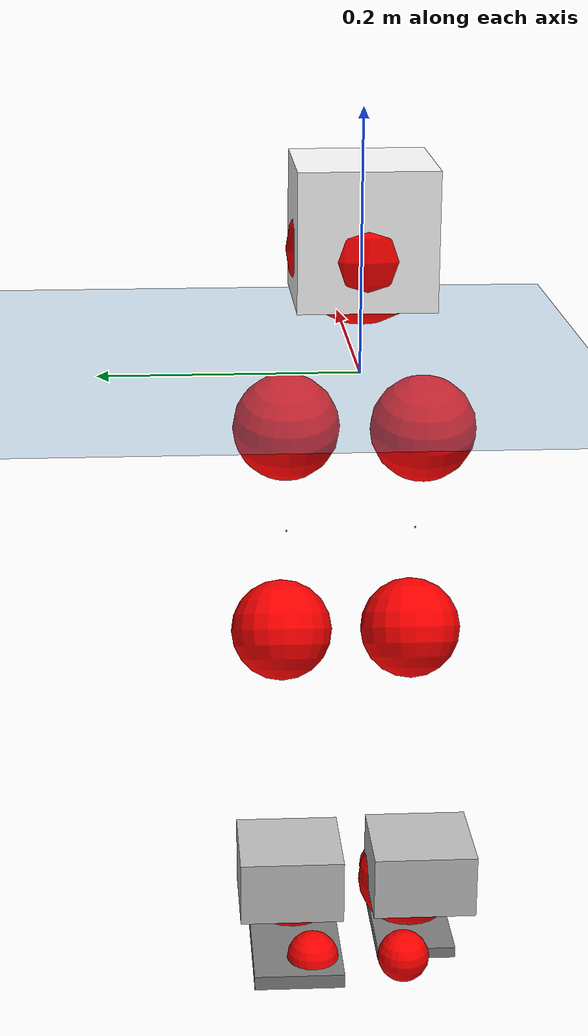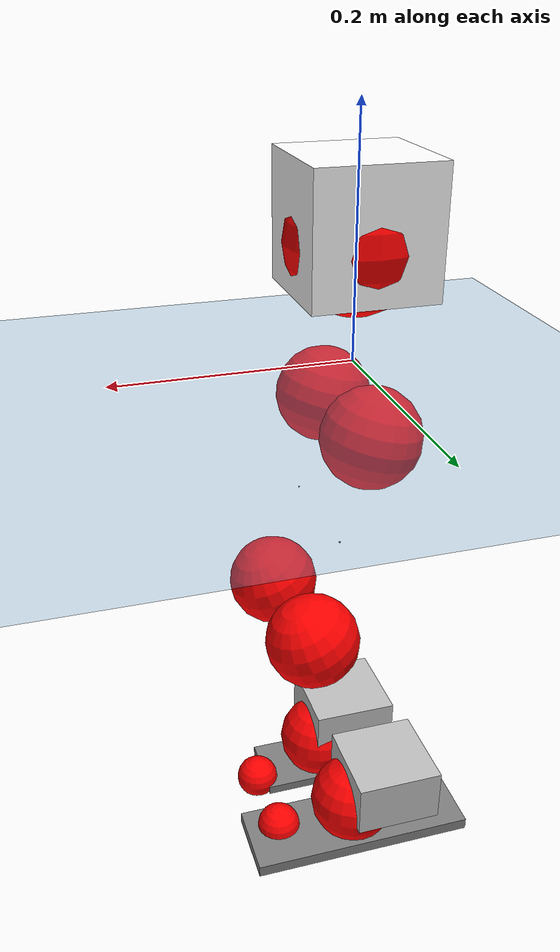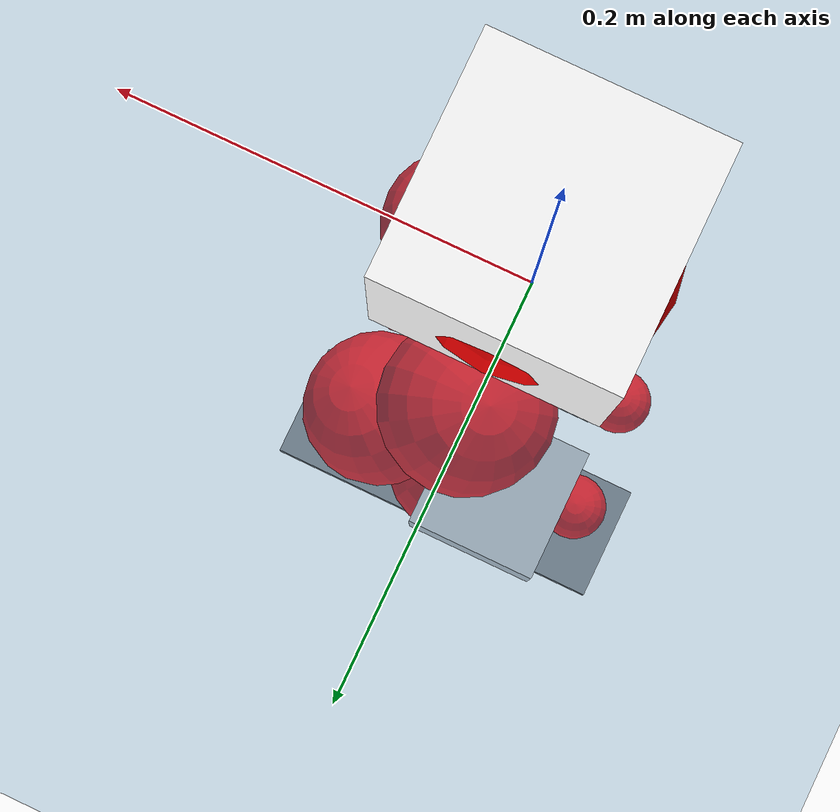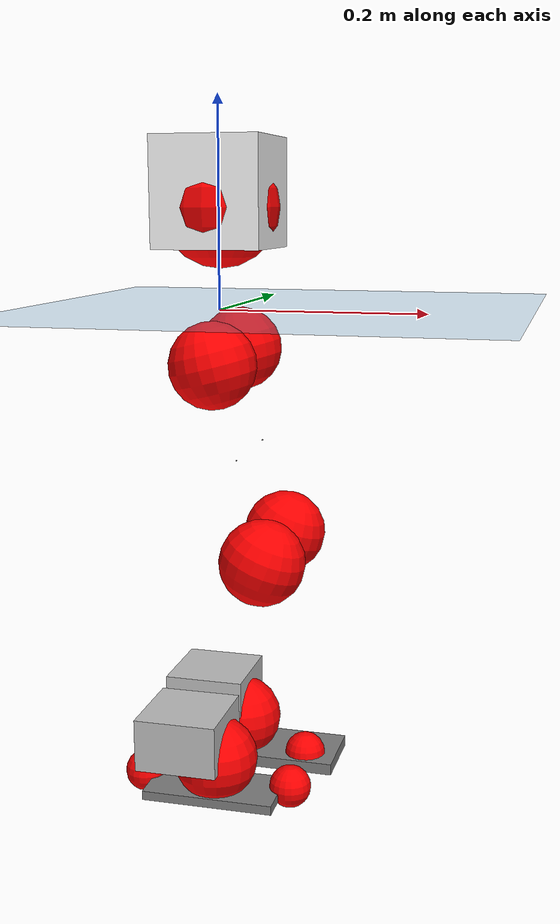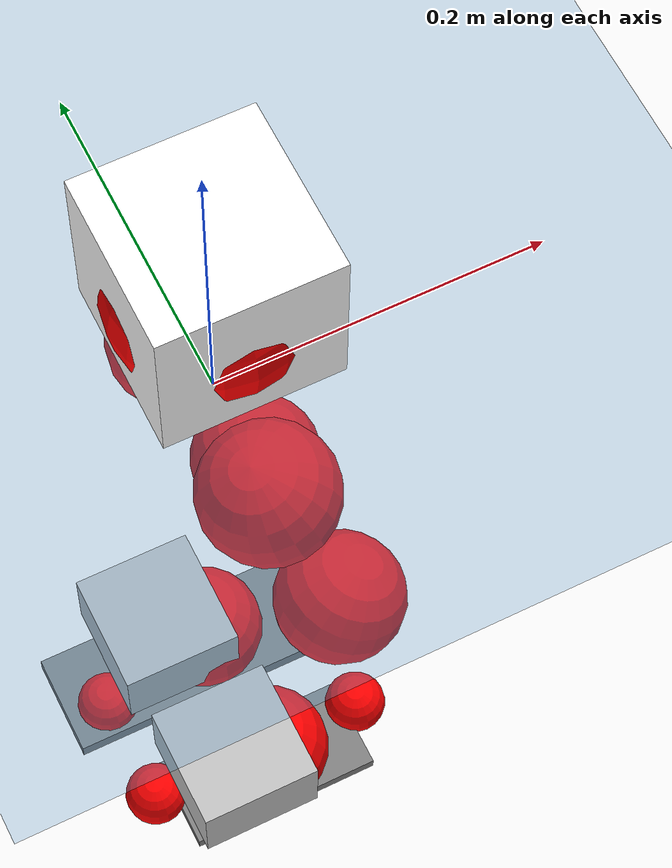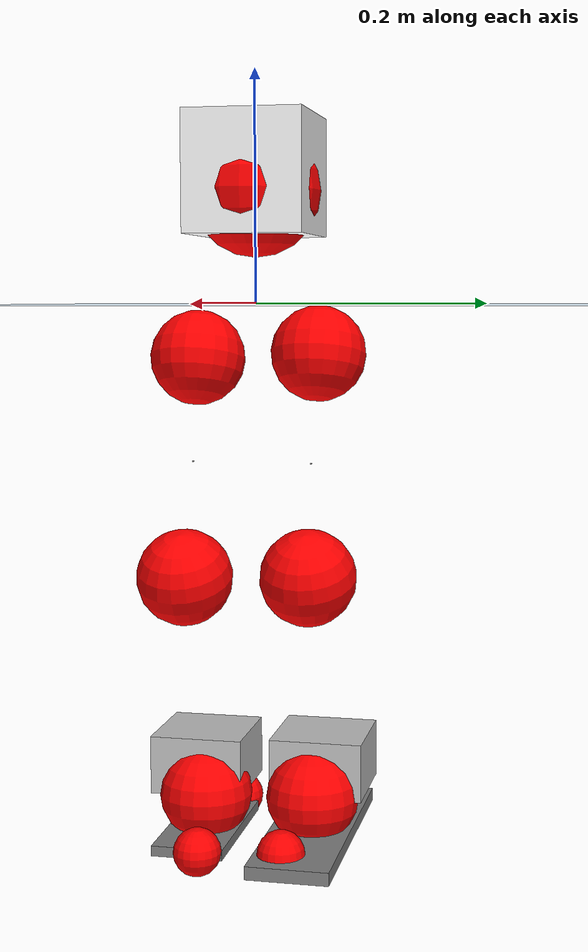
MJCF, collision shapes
<mujoco model="pi_12dof_release_v1">
  <compiler angle="radian" assetdir="assets" balanceinertia="true" inertiafromgeom="false"/>

  <option timestep="0.005" density="1.2" viscosity="2e-05"/>

  <size nkey="1"/>

  <visual>
    <quality shadowsize="8192"/>
    <map shadowclip="0.5"/>
  </visual>

  <default>
    <default class="/">
      <joint armature="0.01" damping="0.01" frictionloss="0.01"/>
      <geom contype="0" conaffinity="0" group="1" solref="-1000 -80"/>
      <site size="0.01 0.005 0.005" group="5"/>
      <general forcelimited="true" biastype="affine" gainprm="20" biasprm="0 -20 -0.5"/>
      <default class="foot">
        <geom size="0.0845 0.036 0.005" type="box" condim="6" group="4" priority="1" friction="0.9 0.2 0.2" solimp="0.015 1 0.005"/>
      </default>
      <default class="reward_collision_sphere">
        <geom group="5" rgba="1 0 0 1"/>
      </default>
    </default>
  </default>

  <asset>
    <texture type="skybox" colorspace="auto" name="//unnamed_texture_0" builtin="gradient" rgb1="0.95 0.95 0.95" rgb2="0.95 0.95 0.95" width="100" height="600"/>
    <texture type="2d" colorspace="auto" name="texplane" builtin="checker" rgb1="0.345 0.575 0.748" rgb2="0.345 0.575 0.748" markrgb="1 1 1" width="512" height="512"/>
    <material name="MatPlane" class="/" texture="texplane" texuniform="true" texrepeat="2 2" specular="0.9"/>
    <mesh name="baselink_1" class="/" file="baselink_1.STL"/>
    <mesh name="r_hip_pitch_link" class="/" file="r_hip_pitch_link.STL"/>
    <mesh name="r_hip_roll_link" class="/" file="r_hip_roll_link.STL"/>
    <mesh name="r_thigh_link" class="/" file="r_thigh_link.STL"/>
    <mesh name="r_calf_link" class="/" file="r_calf_link.STL"/>
    <mesh name="r_ankle_pitch_link" class="/" file="r_ankle_pitch_link.STL"/>
    <mesh name="r_ankle_roll_link" class="/" file="r_ankle_roll_link.STL"/>
    <mesh name="l_hip_pitch_link" class="/" file="l_hip_pitch_link.STL"/>
    <mesh name="l_hip_roll_link" class="/" file="l_hip_roll_link.STL"/>
    <mesh name="l_thigh_link" class="/" file="l_thigh_link.STL"/>
    <mesh name="l_calf_link" class="/" file="l_calf_link.STL"/>
    <mesh name="l_ankle_pitch_link" class="/" file="l_ankle_pitch_link.STL"/>
    <mesh name="l_ankle_roll_link" class="/" file="l_ankle_roll_link.STL"/>
  </asset>

  <worldbody>
    <geom name="floor" class="/" size="100 100 0.125" type="plane" group="0" material="MatPlane"/>
    <light name="toplight_shadow" class="/" pos="0 0 5" dir="0.0990148 0.0990148 -0.990148" type="directional" ambient="0.04 0.04 0.04" diffuse="0.55 0.55 0.55" specular="0.12 0.12 0.12"/>
    <light name="toplight_fill" class="/" pos="0 0 5" dir="0.0990148 0.0990148 -0.990148" type="directional" castshadow="false" ambient="0.04 0.04 0.04" diffuse="0.3 0.3 0.3" specular="0.08 0.08 0.08"/>
    <body name="trunk" pos="0.00121595 0.000245874 -6.2956e-05" quat="1 -7.7575e-05 -0.000784138 -4.80206e-05">
      <inertial pos="0.00358464 0.00192212 0.0576796" quat="0.690027 0.0173125 0.0157984 0.723404" mass="2.43431" diaginertia="0.0168841 0.000733876 0.0195665"/>
      <joint name="//unnamed_joint_0" type="free"/>
      <geom name="//unnamed_geom_1" class="/" type="mesh" density="0" rgba="1 1 1 1" mesh="baselink_1"/>
      <geom name="//unnamed_geom_2" class="/" size="0.0516764 0.0516764 0.0516764" pos="0 0 0.11003" type="box" rgba="1 1 1 1"/>
      <geom name="//unnamed_geom_3" class="reward_collision_sphere" size="0.056844" pos="0 0 0.0962759"/>
      <site name="imu" class="/" pos="0.0200077 -0.00968786 -0.0104232" size="0.0103353"/>
      <camera name="track" class="/" pos="0 -1.21768 0" quat="0.707107 0.707107 0 0" mode="trackcom"/>
      <camera name="ego_camera" class="/" pos="0.0837281 0 0.247567" quat="-0.5 -0.5 0.5 0.5"/>
      <body name="r_hip_pitch_link" pos="0.00372514 -0.0158385 -0.0465841" quat="0.992104 0.000157566 -0.125415 -0.000236581">
        <inertial pos="-0.00122194 -0.0358382 -0.000488806" quat="-0.0212896 0.705072 -0.0243698 0.708397" mass="0.421127" diaginertia="0.000194872 8.27543e-06 0.000421257"/>
        <joint name="r_hip_pitch_joint" class="/" pos="0 0 0" axis="0.0131499 -0.999765 -0.0172471" range="-1.74245 1.30831" armature="0.00928801" damping="0.0264892" frictionloss="0.00907145"/>
        <geom name="//unnamed_geom_4" class="/" type="mesh" density="0" rgba="0.75294 0.75294 0.75294 1" mesh="r_hip_pitch_link"/>
        <geom name="//unnamed_geom_5" class="/" size="0.000516764 0.000516764 0.000516764" type="box" rgba="0.75294 0.75294 0.75294 1"/>
        <body name="r_hip_roll_link" pos="0.00268963 -0.0348065 -0.00115234" quat="1 -0.000105331 0.000313385 0.000207049">
          <inertial pos="0.000744663 -0.000803431 -0.0863335" quat="0.713462 -0.0779204 -0.088826 0.690659" mass="0.437199" diaginertia="0.000603643 2.34958e-05 0.000619671"/>
          <joint name="r_hip_roll_joint" class="/" pos="0 0 0" axis="-0.999811 0.00839679 0.0175492" range="-0.0729759 0.541331" armature="0.00908797" damping="0" frictionloss="0.0101574"/>
          <geom name="//unnamed_geom_6" class="/" type="mesh" density="0" rgba="0.75294 0.75294 0.75294 1" mesh="r_hip_roll_link"/>
          <geom name="//unnamed_geom_7" class="/" size="0.000516764 0.000516764 0.000516764" type="box" rgba="0.75294 0.75294 0.75294 1"/>
          <geom name="//unnamed_geom_8" class="reward_collision_sphere" size="0.0413411"/>
          <body name="r_thigh_link" pos="-0.00107891 0.0010991 -0.0914662" quat="1 0.000272001 -0.000367152 -0.000466609">
            <inertial pos="-0.00140996 0.000476081 -0.0681053" quat="0.735261 0.677668 0.0124786 -0.00159048" mass="0.122156" diaginertia="0.000213179 7.95843e-06 0.00027155"/>
            <joint name="r_thigh_joint" class="/" pos="0 0 0" axis="0.00191069 -0.0037144 -0.999991" range="-0.254727 0.632786" armature="0.01005" damping="0.00816388" frictionloss="0.0114573"/>
            <geom name="//unnamed_geom_9" class="/" type="mesh" density="0" rgba="0.75294 0.75294 0.75294 1" mesh="r_thigh_link"/>
            <geom name="//unnamed_geom_10" class="/" size="0.000516764 0.000516764 0.000516764" type="box" rgba="0.75294 0.75294 0.75294 1"/>
            <body name="r_calf_link" pos="-0.000144699 -0.00115287 -0.0999028" quat="0.947674 -3.47512e-05 0.319241 8.04348e-07">
              <inertial pos="-0.00240817 -0.000632535 -0.0955309" quat="0.999994 -0.00237525 0.00187666 0.00165266" mass="0.877264" diaginertia="0.00600668 0.000299671 0.000869935"/>
              <joint name="r_calf_joint" class="/" pos="0 0 0" axis="-0.00117685 -0.999994 0.00327408" range="-1.67213 0.673844" armature="0.0102043" damping="0.00904382" frictionloss="0.00946359"/>
              <geom name="//unnamed_geom_11" class="/" type="mesh" density="0" rgba="0.75294 0.75294 0.75294 1" mesh="r_calf_link"/>
              <geom name="//unnamed_geom_12" class="/" size="0.000516764 0.000516764 0.000516764" type="box" rgba="0.75294 0.75294 0.75294 1"/>
              <geom name="//unnamed_geom_13" class="reward_collision_sphere" size="0.0413411"/>
              <body name="r_ankle_pitch_link" pos="-0.000685401 -0.00310624 -0.194299" quat="0.980129 -0.00027357 -0.198358 0.000257907">
                <inertial pos="0.00531405 0.00435255 -0.00143406" quat="0.00339216 0.701234 -0.00569754 0.712901" mass="0.203215" diaginertia="0.000546444 1.88498e-05 0.000608134"/>
                <joint name="r_ankle_pitch_joint" class="/" pos="0 0 0" axis="0.00737143 -0.999894 -0.0125765" range="-1.35328 0.551915" armature="0.00902032" damping="0.0154707" frictionloss="0.010503"/>
                <geom name="//unnamed_geom_14" class="/" type="mesh" density="0" rgba="0.75294 0.75294 0.75294 1" mesh="r_ankle_pitch_link"/>
                <geom name="//unnamed_geom_15" class="/" size="0.0403076 0.0413411 0.0258382" type="box" rgba="0.75294 0.75294 0.75294 1"/>
                <body name="r_ankle_roll_link" pos="0.0823329 0.00635627 0.00105516" quat="1 -0.000164759 0.000106835 0.000488675">
                  <inertial pos="-0.0255962 0.000233048 -0.0227191" quat="0.561065 0.427283 0.43784 0.557612" mass="0.55699" diaginertia="0.00205121 8.72989e-05 0.0014009"/>
                  <joint name="r_ankle_roll_joint" class="/" pos="0 0 0" axis="-0.999986 0.00509673 -0.00105134" stiffness="0.00141853" range="-0.159726 0.198975" armature="0.0117006" damping="0.0154162" frictionloss="0.00942092"/>
                  <geom name="//unnamed_geom_16" class="/" type="mesh" density="0" rgba="0.75294 0.75294 0.75294 1" mesh="r_ankle_roll_link"/>
                  <geom name="//unnamed_geom_17" class="/" type="mesh" rgba="0.75294 0.75294 0.75294 1" mesh="r_ankle_roll_link"/>
                  <geom name="right_foot" class="foot" size="0.0655167 0.0315283 0.00445995" pos="-0.0569351 0 -0.0605163"/>
                  <geom name="//unnamed_geom_19" class="reward_collision_sphere" size="0.0413411" pos="-0.0558188 0 -0.0275074"/>
                  <geom name="//unnamed_geom_20" class="reward_collision_sphere" size="0.0206706" pos="0.0167456 0.0121768 -0.0550148"/>
                  <geom name="//unnamed_geom_21" class="reward_collision_sphere" size="0.0206706" pos="-0.133965 0.0121768 -0.0550148"/>
                  <site name="right_foot" class="foot" pos="-0.0569351 0 -0.0605163" size="0.0103353"/>
                </body>
              </body>
            </body>
          </body>
        </body>
      </body>
      <body name="l_hip_pitch_link" pos="0.00329824 0.0166301 -0.0426354" quat="0.99229 -0.000643153 -0.123937 -7.05518e-05">
        <inertial pos="0.00311825 0.0304211 -0.000194872" quat="-0.0420198 0.706224 0.0316236 0.706032" mass="0.436366" diaginertia="0.000220166 8.57306e-06 0.000518982"/>
        <joint name="l_hip_pitch_joint" class="/" pos="0 0 0" axis="0.00358877 0.999992 -0.0016556" range="-1.20021 1.80931" armature="0.00863154" damping="0.0268411" frictionloss="0.00913932"/>
        <geom name="//unnamed_geom_22" class="/" type="mesh" density="0" rgba="0.75294 0.75294 0.75294 1" mesh="l_hip_pitch_link"/>
        <geom name="//unnamed_geom_23" class="/" size="0.000516764 0.000516764 0.000516764" type="box" rgba="0.75294 0.75294 0.75294 1"/>
        <body name="l_hip_roll_link" pos="-0.000948324 0.0392042 -1.75008e-05" quat="1 9.47486e-06 0.000173748 -0.000241002">
          <inertial pos="-0.00283273 -0.000960648 -0.0866907" quat="0.701984 -0.0781696 -0.0765309 0.703741" mass="0.427159" diaginertia="0.000574638 2.29575e-05 0.000652269"/>
          <joint name="l_hip_roll_joint" class="/" pos="0 0 0" axis="-0.99983 0.0161788 0.00882464" stiffness="0.00904149" range="-0.577031 0.124868" armature="0.0112866" damping="0" frictionloss="0.011412"/>
          <geom name="//unnamed_geom_24" class="/" type="mesh" density="0" rgba="0.75294 0.75294 0.75294 1" mesh="l_hip_roll_link"/>
          <geom name="//unnamed_geom_25" class="/" size="0.000516764 0.000516764 0.000516764" type="box" rgba="0.75294 0.75294 0.75294 1"/>
          <geom name="//unnamed_geom_26" class="reward_collision_sphere" size="0.0413411"/>
          <body name="l_thigh_link" pos="-0.000859662 -0.00187741 -0.095655" quat="0.999999 -3.52119e-05 0.000389769 -0.000998074">
            <inertial pos="-2.25906e-05 -0.00259038 -0.0661253" quat="0.691548 0.722274 -0.00877076 -0.00201616" mass="0.123073" diaginertia="0.000216374 8.00413e-06 0.000296395"/>
            <joint name="l_thigh_joint" class="/" pos="0 0 0" axis="-0.000707467 -0.0119023 -0.999929" range="-0.621566 0.309916" armature="0.0111478" damping="0.0152933" frictionloss="0.0106685"/>
            <geom name="//unnamed_geom_27" class="/" type="mesh" density="0" rgba="0.75294 0.75294 0.75294 1" mesh="l_thigh_link"/>
            <geom name="//unnamed_geom_28" class="/" size="0.000516764 0.000516764 0.000516764" type="box" rgba="0.75294 0.75294 0.75294 1"/>
            <body name="l_calf_link" pos="-0.000917365 0.00232401 -0.0971836" quat="0.94753 0.000160078 0.319665 -0.000219563">
              <inertial pos="0.0030423 0.00203732 -0.0978338" quat="0.999966 0.00053123 0.00367414 -0.00736701" mass="0.883457" diaginertia="0.00591652 0.000285515 0.000878328"/>
              <joint name="l_calf_joint" class="/" pos="0 0 0" axis="0.00673738 0.999977 -0.000359847" range="-0.604575 1.74859" armature="0.0113448" damping="0.0124741" frictionloss="0.0114706"/>
              <geom name="//unnamed_geom_29" class="/" type="mesh" density="0" rgba="0.75294 0.75294 0.75294 1" mesh="l_calf_link"/>
              <geom name="//unnamed_geom_30" class="/" size="0.000516764 0.000516764 0.000516764" type="box" rgba="0.75294 0.75294 0.75294 1"/>
              <geom name="//unnamed_geom_31" class="reward_collision_sphere" size="0.0413411"/>
              <body name="l_ankle_pitch_link" pos="4.90195e-05 -0.00213729 -0.195481" quat="0.980073 0.00014226 -0.198635 0.0003074">
                <inertial pos="0.00525339 -0.00351783 0.00179887" quat="-0.00263251 0.70699 0.00358168 0.70721" mass="0.21438" diaginertia="0.000575356 1.95934e-05 0.000642328"/>
                <joint name="l_ankle_pitch_joint" class="/" pos="0 0 0" axis="0.00167585 0.999996 0.0022449" range="-0.509775 1.28557" armature="0.0100127" damping="0.00689831" frictionloss="0.00779036"/>
                <geom name="//unnamed_geom_32" class="/" type="mesh" density="0" rgba="0.75294 0.75294 0.75294 1" mesh="l_ankle_pitch_link"/>
                <geom name="//unnamed_geom_33" class="/" size="0.0403076 0.0413411 0.0258382" type="box" rgba="0.75294 0.75294 0.75294 1"/>
                <body name="l_ankle_roll_link" pos="0.0861388 -0.00390018 0.00247325" quat="1 -2.27728e-05 -0.000339262 -0.000645028">
                  <inertial pos="-0.0294381 -0.000634936 -0.0197361" quat="0.562673 0.426675 0.438873 0.555643" mass="0.591842" diaginertia="0.00195672 8.59082e-05 0.00141288"/>
                  <joint name="l_ankle_roll_joint" class="/" pos="0 0 0" axis="-0.999981 -0.00496757 -0.00376571" stiffness="0.00268532" range="-0.14193 0.157093" armature="0.00901456" damping="0.0134905" frictionloss="0.012114"/>
                  <geom name="//unnamed_geom_34" class="/" type="mesh" density="0" rgba="0.75294 0.75294 0.75294 1" mesh="l_ankle_roll_link"/>
                  <geom name="//unnamed_geom_35" class="/" type="mesh" rgba="0.75294 0.75294 0.75294 1" mesh="l_ankle_roll_link"/>
                  <geom name="left_foot" class="foot" size="0.106311 0.0356812 0.00569196" pos="-0.0569351 0 -0.0605163"/>
                  <geom name="//unnamed_geom_37" class="reward_collision_sphere" size="0.0413411" pos="-0.0558188 0 -0.0275074"/>
                  <geom name="//unnamed_geom_38" class="reward_collision_sphere" size="0.0206706" pos="0.0167456 -0.0121768 -0.0550148"/>
                  <geom name="//unnamed_geom_39" class="reward_collision_sphere" size="0.0206706" pos="-0.133965 -0.0121768 -0.0550148"/>
                  <site name="left_foot" class="foot" pos="-0.0569351 0 -0.0605163" size="0.0103353"/>
                </body>
              </body>
            </body>
          </body>
        </body>
      </body>
    </body>
  </worldbody>

  <contact>
    <pair class="/" geom1="floor" geom2="right_foot" name="//unnamed_contact_1"/>
    <pair class="/" geom1="floor" geom2="left_foot" name="//unnamed_contact_0"/>
  </contact>

  <actuator>
    <general name="r_hip_pitch_joint" class="/" joint="r_hip_pitch_joint" forcerange="-23.733 23.733" gainprm="19.8682" biasprm="0 -19.8682 -0.492707"/>
    <general name="r_hip_roll_joint" class="/" joint="r_hip_roll_joint" forcerange="-22.9005 22.9005" gainprm="19.8682" biasprm="0 -19.8682 -0.492707"/>
    <general name="r_thigh_joint" class="/" joint="r_thigh_joint" forcerange="-21.3391 21.3391" gainprm="19.8682" biasprm="0 -19.8682 -0.492707"/>
    <general name="r_calf_joint" class="/" joint="r_calf_joint" forcerange="-22.0887 22.0887" gainprm="19.8682" biasprm="0 -19.8682 -0.492707"/>
    <general name="r_ankle_pitch_joint" class="/" joint="r_ankle_pitch_joint" forcerange="-22.7082 22.7082" gainprm="19.8682" biasprm="0 -19.8682 -0.492707"/>
    <general name="r_ankle_roll_joint" class="/" joint="r_ankle_roll_joint" forcerange="-21.8663 21.8663" gainprm="19.8682" biasprm="0 -19.8682 -0.492707"/>
    <general name="l_hip_pitch_joint" class="/" joint="l_hip_pitch_joint" forcerange="-20.1633 20.1633" gainprm="19.8682" biasprm="0 -19.8682 -0.492707"/>
    <general name="l_hip_roll_joint" class="/" joint="l_hip_roll_joint" forcerange="-20.8098 20.8098" gainprm="19.8682" biasprm="0 -19.8682 -0.492707"/>
    <general name="l_thigh_joint" class="/" joint="l_thigh_joint" forcerange="-19.6583 19.6583" gainprm="19.8682" biasprm="0 -19.8682 -0.492707"/>
    <general name="l_calf_joint" class="/" joint="l_calf_joint" forcerange="-21.1028 21.1028" gainprm="19.8682" biasprm="0 -19.8682 -0.492707"/>
    <general name="l_ankle_pitch_joint" class="/" joint="l_ankle_pitch_joint" forcerange="-23.2159 23.2159" gainprm="19.8682" biasprm="0 -19.8682 -0.492707"/>
    <general name="l_ankle_roll_joint" class="/" joint="l_ankle_roll_joint" forcerange="-23.2582 23.2582" gainprm="19.8682" biasprm="0 -19.8682 -0.492707"/>
  </actuator>

  <sensor>
    <gyro site="imu" name="imu_angular_velocity"/>
    <velocimeter site="imu" name="imu_linear_velocity"/>
    <framelinvel objtype="site" objname="left_foot" name="left_foot_global_linear_velocity"/>
    <framelinvel objtype="site" objname="right_foot" name="right_foot_global_linear_velocity"/>
  </sensor>

  <keyframe>
    <key name="home" qpos="0 0 0.291 1 0 0 0 0.4 0 0 -0.8 0.4 0 -0.4 0 0 0.8 -0.4 0"/>
  </keyframe>
</mujoco>
